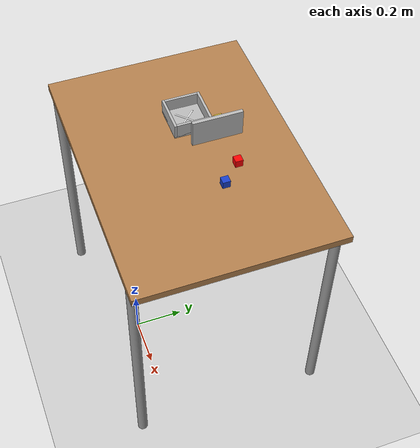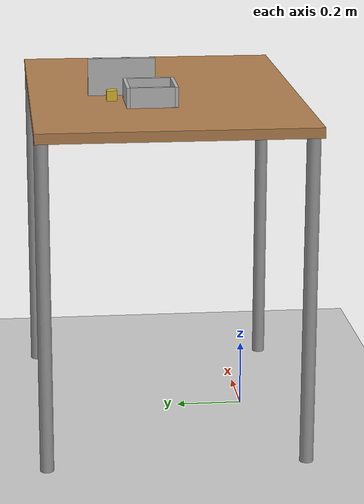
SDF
<sdf version="1.9">
 <world name="giraffe_camera_world">
  <plugin filename="gz-sim-physics-system" name="gz::sim::systems::Physics"/>
  <plugin filename="gz-sim-user-commands-system" name="gz::sim::systems::UserCommands"/>
  <plugin filename="gz-sim-scene-broadcaster-system" name="gz::sim::systems::SceneBroadcaster"/>
  <plugin filename="gz-sim-sensors-system" name="gz::sim::systems::Sensors">
   <render_engine>ogre2</render_engine>
  </plugin>
  <include><uri>model://ground_plane</uri></include>
  <include><uri>model://sun</uri></include>
  <model name="red_cube">
   <pose>0.1 0.4 1.03 0 0 0</pose>
   <link name="link">
    <visual name="visual">
     <geometry><box><size>0.03 0.03 0.03</size></box></geometry>
     <material><ambient>1 0 0 1</ambient><diffuse>1 0 0 1</diffuse></material>
    </visual>
    <collision name="collision"><geometry><box><size>0.03 0.03 0.03</size></box></geometry></collision>
    <inertial><mass>1.0</mass><inertia><ixx>0.001</ixx><iyy>0.001</iyy><izz>0.001</izz></inertia></inertial>
   </link>
  </model>
  <model name="blue_cube">
   <pose>0.18 0.32 1.03 0 0 0</pose>
   <link name="link">
    <visual name="visual">
     <geometry><box><size>0.03 0.03 0.03</size></box></geometry>
     <material><ambient>0.1 0.25 0.8 1</ambient><diffuse>0.1 0.25 0.8 1</diffuse></material>
    </visual>
    <collision name="collision"><geometry><box><size>0.03 0.03 0.03</size></box></geometry></collision>
    <inertial><mass>1.0</mass><inertia><ixx>0.001</ixx><iyy>0.001</iyy><izz>0.001</izz></inertia></inertial>
   </link>
  </model>
  <model name="yellow_cube">
   <pose>-0.125 0.41 1.03 0 0 0</pose>
   <link name="link">
    <visual name="visual">
     <geometry><box><size>0.03 0.03 0.03</size></box></geometry>
     <material><ambient>0.85 0.72 0.18 1</ambient><diffuse>0.85 0.72 0.18 1</diffuse></material>
    </visual>
    <collision name="collision"><geometry><box><size>0.03 0.03 0.03</size></box></geometry></collision>
    <inertial><mass>1.0</mass><inertia><ixx>0.001</ixx><iyy>0.001</iyy><izz>0.001</izz></inertia></inertial>
   </link>
  </model>
  <model name="collection_box">
   <static>true</static>
   <pose>-0.175 0.3 1.015 0 0 0</pose>
   <link name="box">
    <collision name="bottom_collision">
     <pose>0 0 0.005 0 0 0</pose>
     <geometry><box><size>0.15 0.15 0.01</size></box></geometry>
    </collision>
    <visual name="bottom_visual">
     <pose>0 0 0.005 0 0 0</pose>
     <geometry><box><size>0.15 0.15 0.01</size></box></geometry>
    </visual>
    <visual name="x_mark_1">
     <pose>0 0 0.0105 0 0 0.785398</pose>
     <geometry><box><size>0.10 0.005 0.001</size></box></geometry>
     <material><ambient>1 1 1 1</ambient><diffuse>1 1 1 1</diffuse></material>
    </visual>
    <visual name="x_mark_2">
     <pose>0 0 0.0105 0 0 -0.785398</pose>
     <geometry><box><size>0.10 0.005 0.001</size></box></geometry>
     <material><ambient>1 1 1 1</ambient><diffuse>1 1 1 1</diffuse></material>
    </visual>
    <collision name="left_collision">
     <pose>0 0.07 0.03 0 0 0</pose>
     <geometry><box><size>0.15 0.01 0.06</size></box></geometry>
    </collision>
    <visual name="left_visual">
     <pose>0 0.07 0.03 0 0 0</pose>
     <geometry><box><size>0.15 0.01 0.06</size></box></geometry>
    </visual>
    <collision name="right_collision">
     <pose>0 -0.07 0.03 0 0 0</pose>
     <geometry><box><size>0.15 0.01 0.06</size></box></geometry>
    </collision>
    <visual name="right_visual">
     <pose>0 -0.07 0.03 0 0 0</pose>
     <geometry><box><size>0.15 0.01 0.06</size></box></geometry>
    </visual>
    <collision name="front_collision">
     <pose>0.07 0 0.03 0 0 0</pose>
     <geometry><box><size>0.01 0.13 0.06</size></box></geometry>
    </collision>
    <visual name="front_visual">
     <pose>0.07 0 0.03 0 0 0</pose>
     <geometry><box><size>0.01 0.13 0.06</size></box></geometry>
    </visual>
    <collision name="back_collision">
     <pose>-0.07 0 0.03 0 0 0</pose>
     <geometry><box><size>0.01 0.13 0.06</size></box></geometry>
    </collision>
    <visual name="back_visual">
     <pose>-0.07 0 0.03 0 0 0</pose>
     <geometry><box><size>0.01 0.13 0.06</size></box></geometry>
    </visual>
   </link>
  </model>
  <model name="static_obstacle_1">
   <static>true</static>
   <pose>-0.05 0.375 1.07 0 0 0.0</pose>
   <link name="link">
    <collision name="collision"><geometry><box><size>0.015 0.2 0.11</size></box></geometry></collision>
    <visual name="visual"><geometry><box><size>0.015 0.2 0.11</size></box></geometry></visual>
   </link>
  </model>
  <include><uri>model://table</uri><pose>0 0.25 0 0 0 0</pose></include>
 </world>
</sdf>

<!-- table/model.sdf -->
<sdf version="1.5">
  <model name="Table">
    <static>true</static>

    <link name="link">

      <!-- Tabletop -->
      <collision name="surface">
        <pose>0 0 1.0 0 0 0</pose>
        <geometry>
          <box>
            <size>1.1 0.8 0.03</size>
          </box>
        </geometry>
        <surface>
          <friction>
            <ode>
              <mu>0.6</mu>
              <mu2>0.6</mu2>
            </ode>
          </friction>
        </surface>
      </collision>

      <visual name="visual1">
        <pose>0 0 1.0 0 0 0</pose>
        <geometry>
          <box>
            <size>1.1 0.8 0.03</size>
          </box>
        </geometry>
        <material>
          <diffuse>1.0 1.0 1.0</diffuse>
          <script>
            <uri>file://media/materials/scripts/gazebo.material</uri>
            <name>Gazebo/Wood</name>
          </script>
          <pbr>
            <metal>
              <albedo_map>https://fuel.gazebosim.org/1.0/openrobotics/models/table/4/files/Table_Diffuse.jpg</albedo_map>
            </metal>
          </pbr>
        </material>
      </visual>

      <!-- Front Left Leg -->
      <collision name="front_left_leg">
        <pose>0.48 0.38 0.5 0 0 0</pose>
        <geometry>
          <cylinder>
            <radius>0.02</radius>
            <length>1.0</length>
          </cylinder>
        </geometry>
      </collision>

      <visual name="front_left_leg">
        <pose>0.48 0.38 0.5 0 0 0</pose>
        <geometry>
          <cylinder>
            <radius>0.02</radius>
            <length>1.0</length>
          </cylinder>
        </geometry>
        <material>
          <diffuse>0.5 0.5 0.5</diffuse>
          <script>
            <uri>file://media/materials/scripts/gazebo.material</uri>
            <name>Gazebo/Grey</name>
          </script>
        </material>
      </visual>

      <!-- Front Right Leg -->
      <collision name="front_right_leg">
        <pose>0.48 -0.38 0.5 0 0 0</pose>
        <geometry>
          <cylinder>
            <radius>0.02</radius>
            <length>1.0</length>
          </cylinder>
        </geometry>
      </collision>

      <visual name="front_right_leg">
        <pose>0.48 -0.38 0.5 0 0 0</pose>
        <geometry>
          <cylinder>
            <radius>0.02</radius>
            <length>1.0</length>
          </cylinder>
        </geometry>
        <material>
          <diffuse>0.5 0.5 0.5</diffuse>
          <script>
            <uri>file://media/materials/scripts/gazebo.material</uri>
            <name>Gazebo/Grey</name>
          </script>
        </material>
      </visual>

      <!-- Back Right Leg -->
      <collision name="back_right_leg">
        <pose>-0.48 -0.38 0.5 0 0 0</pose>
        <geometry>
          <cylinder>
            <radius>0.02</radius>
            <length>1.0</length>
          </cylinder>
        </geometry>
      </collision>

      <visual name="back_right_leg">
        <pose>-0.48 -0.38 0.5 0 0 0</pose>
        <geometry>
          <cylinder>
            <radius>0.02</radius>
            <length>1.0</length>
          </cylinder>
        </geometry>
        <material>
          <diffuse>0.5 0.5 0.5</diffuse>
          <script>
            <uri>file://media/materials/scripts/gazebo.material</uri>
            <name>Gazebo/Grey</name>
          </script>
        </material>
      </visual>

      <!-- Back Left Leg -->
      <collision name="back_left_leg">
        <pose>-0.48 0.38 0.5 0 0 0</pose>
        <geometry>
          <cylinder>
            <radius>0.02</radius>
            <length>1.0</length>
          </cylinder>
        </geometry>
      </collision>

      <visual name="back_left_leg">
        <pose>-0.48 0.38 0.5 0 0 0</pose>
        <geometry>
          <cylinder>
            <radius>0.02</radius>
            <length>1.0</length>
          </cylinder>
        </geometry>
        <material>
          <diffuse>0.5 0.5 0.5</diffuse>
          <script>
            <uri>file://media/materials/scripts/gazebo.material</uri>
            <name>Gazebo/Grey</name>
          </script>
        </material>
      </visual>

    </link>
  </model>
</sdf>
